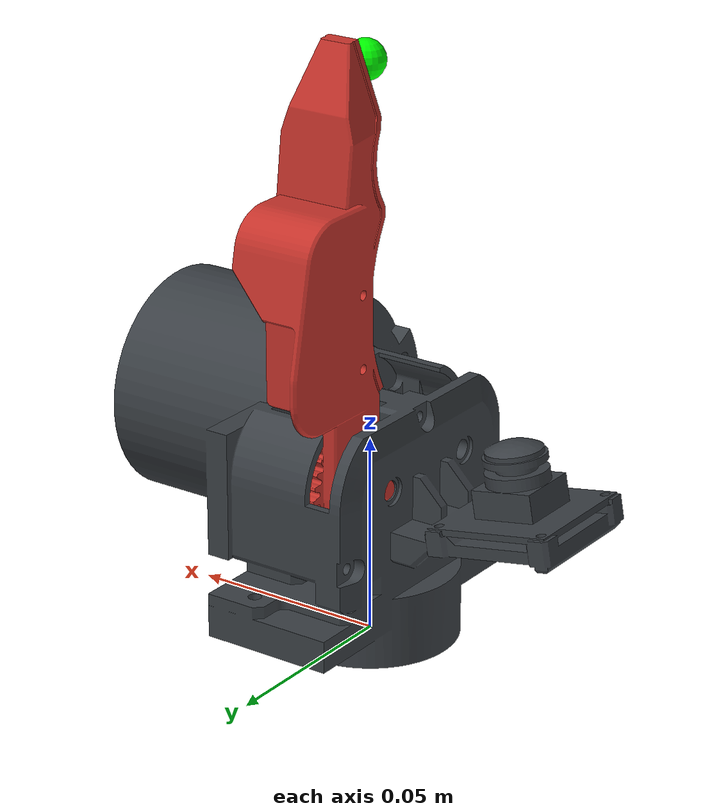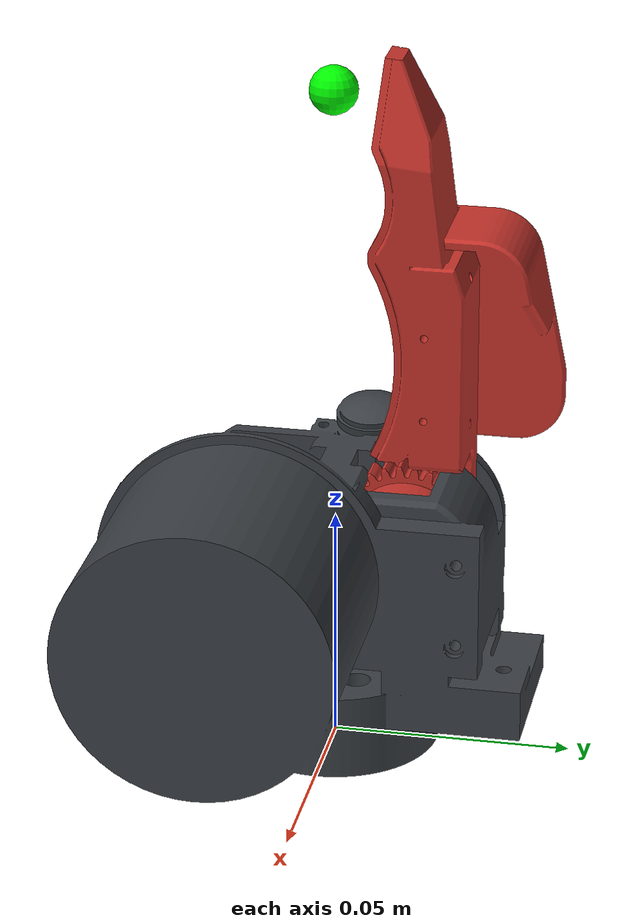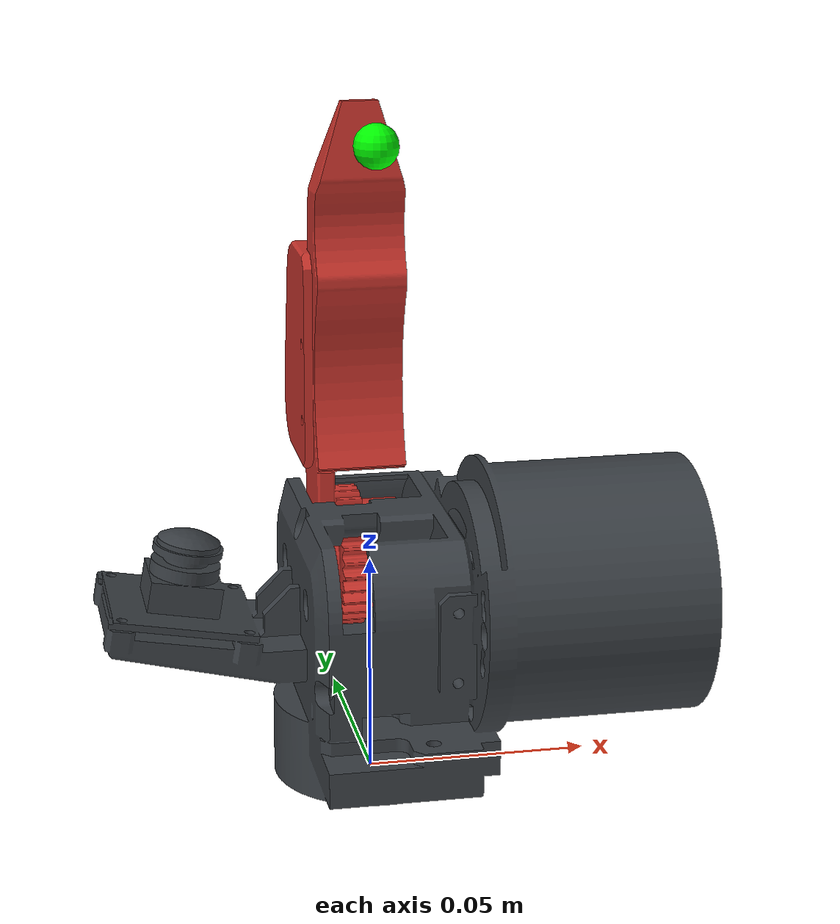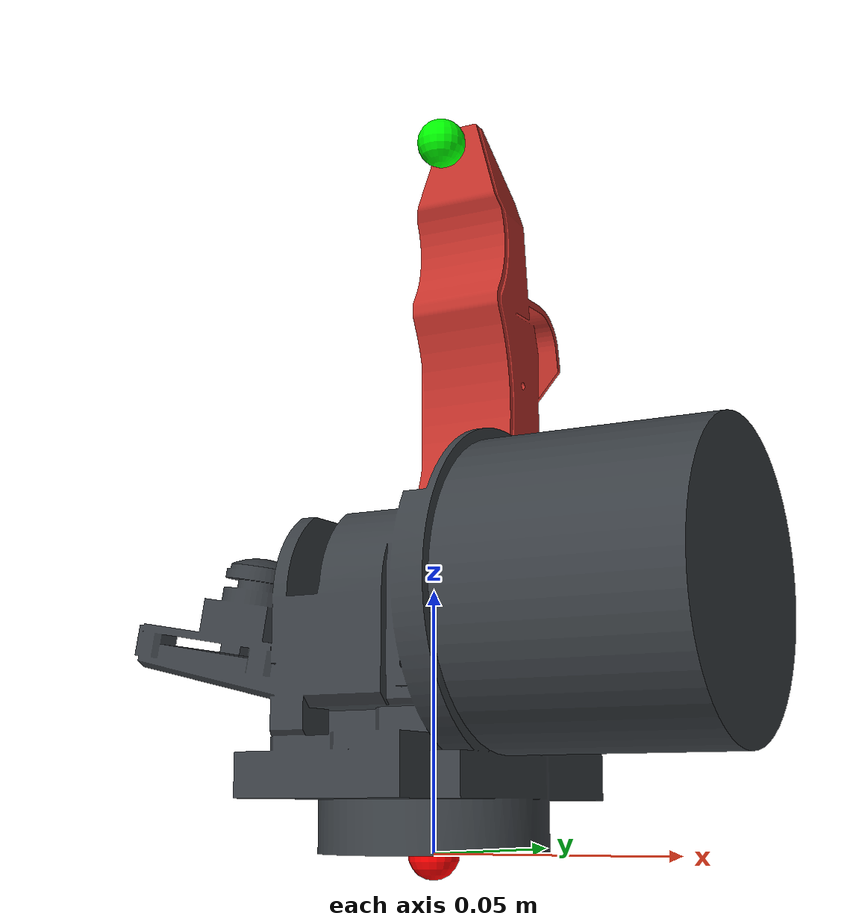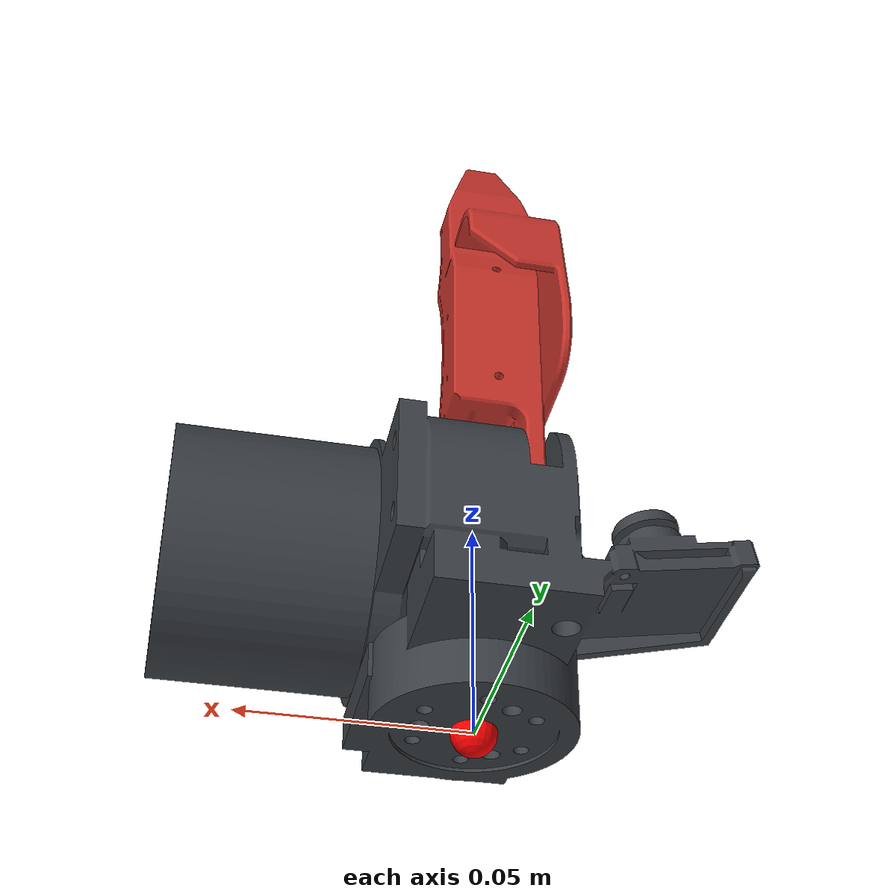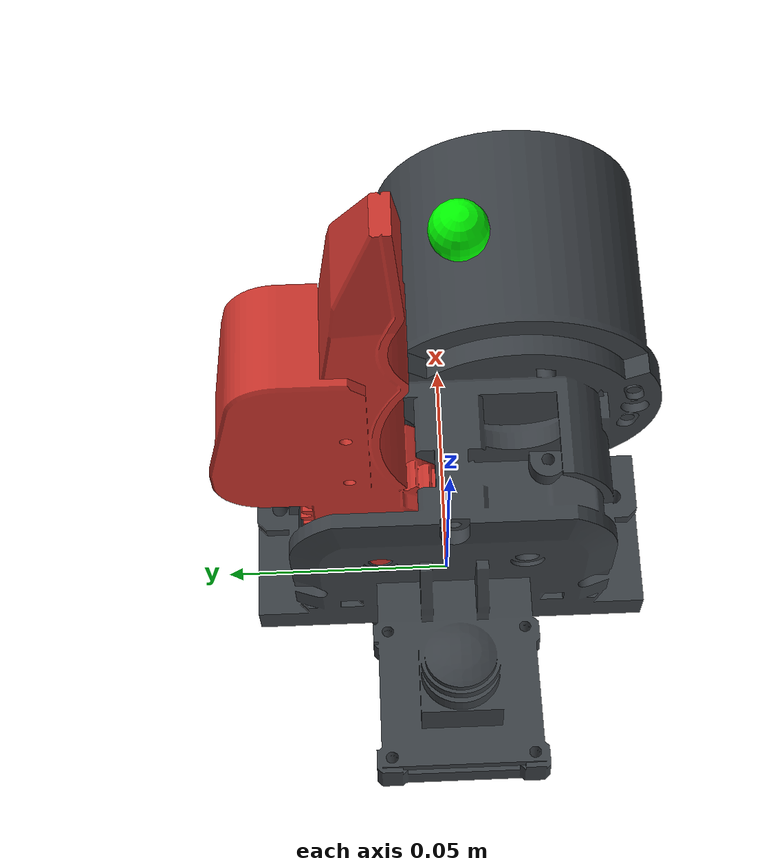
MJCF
<mujoco model="yubi_4310">
  <!-- Generated by yubi-yam/sim/build_model.py. YUBI gripper (Toyota/AIRoA, CERN-OHL-W-2.0)
       re-motored with a DM4310 for the I2RT YAM. Units: metres, radians. -->
  <compiler angle="radian" meshdir="assets"/>

  <asset>
    <mesh name="yubi_base" file="base.stl"/>
    <mesh name="yubi_finger_r" file="finger_r.stl"/>
    <mesh name="yubi_finger_l" file="finger_l.stl"/>
    <mesh name="yubi_pad_r" file="pad_r.stl"/>
    <mesh name="yubi_pad_l" file="pad_l.stl"/>
  </asset>

  <worldbody>
    <body name="gripper" pos="0 0 0" quat="0 0.70711 0.70711 0">
      <inertial pos="-0.00419951 0.011121 -0.036657" mass="0.4429" diaginertia="0.000302673 0.000546434 0.000588704"/>
      <geom type="mesh" mesh="yubi_base" rgba="0.23 0.25 0.27 1" contype="0" conaffinity="0"/>
      <site name="tcp_site" pos="0 0 0" quat="0 1 0 0" size="0.005" rgba="1 0 0 1"/>
      <!-- grasp_site: between the pads, 8 mm up from their tips; fixed for all openings
           to within a few mm (the fingers pivot, so the pinch point moves slightly). -->
      <site name="grasp_site" pos="0 0.00153274 -0.143139" quat="0 1 0 0" size="0.005" rgba="0 1 0 1"/>
      <body name="finger_r" pos="-0.015 0.0065 -0.045996">
        <inertial pos="-0.00480548 -0.00338497 -0.0322808" mass="0.0982" diaginertia="1.84974e-05 8.1095e-05 8.4435e-05"/>
        <joint name="joint7" type="hinge" axis="0 1 0" range="-0.09599 0.62832" damping="0.02"/>
        <geom type="mesh" mesh="yubi_finger_r" pos="0.015 -0.0065 0.045996" rgba="0.78 0.20 0.17 1" contype="0" conaffinity="0"/>
        <geom name="pad_r" type="mesh" mesh="yubi_pad_r" pos="0.015 -0.0065 0.045996" rgba="0.08 0.08 0.08 1" friction="1.2 0.02 0.002"/>
      </body>
      <body name="finger_l" pos="0.015 0.0065 -0.045996">
        <inertial pos="0.00539916 -0.00732917 -0.0364631" mass="0.0935" diaginertia="1.34354e-05 7.46666e-05 7.92179e-05"/>
        <joint name="joint8" type="hinge" axis="0 1 0" range="-0.62832 0.09599" damping="0.02"/>
        <geom type="mesh" mesh="yubi_finger_l" pos="-0.015 -0.0065 0.045996" rgba="0.78 0.20 0.17 1" contype="0" conaffinity="0"/>
        <geom name="pad_l" type="mesh" mesh="yubi_pad_l" pos="-0.015 -0.0065 0.045996" rgba="0.08 0.08 0.08 1" friction="1.2 0.02 0.002"/>
      </body>
    </body>
  </worldbody>

  <equality>
    <!-- 1:1 spur gears: the left finger turns opposite to the right one -->
    <joint joint1="joint8" joint2="joint7" polycoef="0 -1 0 0 0"/>
  </equality>

  <contact>
    <exclude body1="gripper" body2="finger_r"/>
    <exclude body1="gripper" body2="finger_l"/>
    <exclude body1="finger_r" body2="finger_l"/>
  </contact>
</mujoco>
